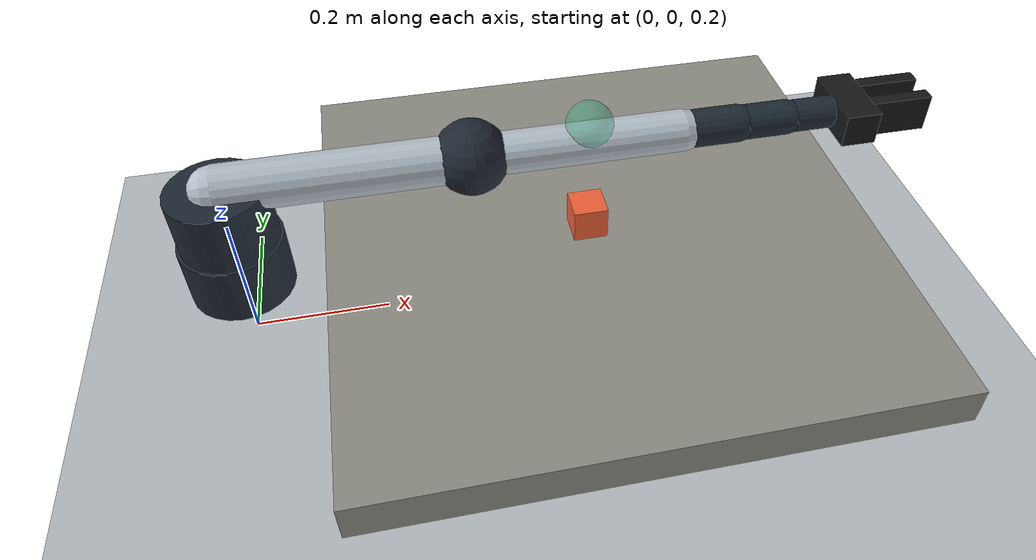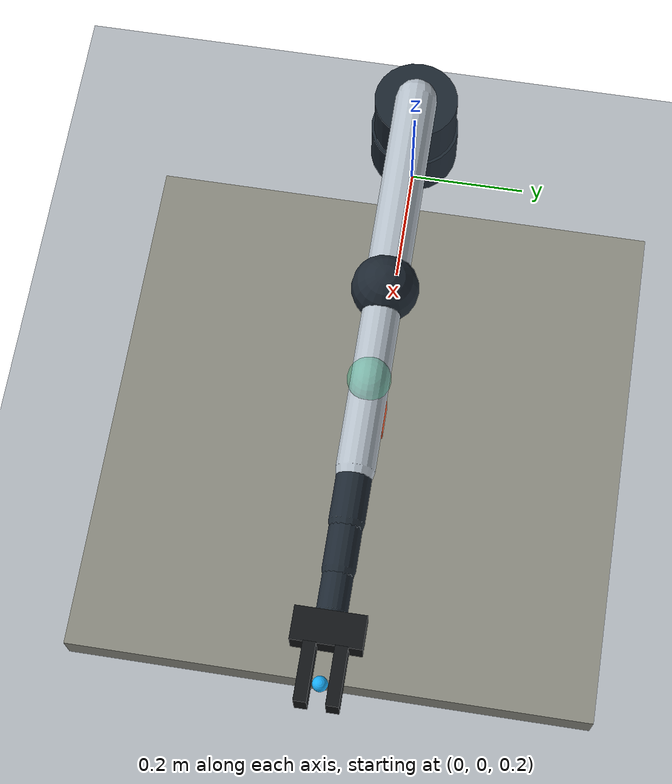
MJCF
<mujoco model="ur5_robotiq85_grasp">
  <compiler angle="radian" coordinate="local" inertiafromgeom="true"/>
  <option timestep="0.002" iterations="50" solver="Newton" gravity="0 0 -9.81"/>

  <default>
    <joint damping="1.2" armature="0.02" limited="true"/>
    <geom condim="4" friction="1.2 0.08 0.005" solref="0.01 1" solimp="0.95 0.99 0.001"/>
    <default class="visual">
      <geom contype="0" conaffinity="0"/>
    </default>
  </default>

  <asset>
    <texture name="grid" type="2d" builtin="checker" width="512" height="512" rgb1="0.82 0.84 0.86" rgb2="0.62 0.65 0.68"/>
    <material name="floor_mat" texture="grid" texrepeat="6 6" reflectance="0.15"/>
    <material name="robot_mat" rgba="0.72 0.76 0.80 1"/>
    <material name="joint_mat" rgba="0.12 0.16 0.20 1"/>
    <material name="finger_mat" rgba="0.08 0.09 0.10 1"/>
    <material name="cube_mat" rgba="0.96 0.38 0.22 1"/>
    <material name="target_mat" rgba="0.12 0.70 0.48 0.35"/>
    <material name="table_mat" rgba="0.56 0.56 0.52 1"/>
  </asset>

  <worldbody>
    <light name="key" pos="0.2 -0.7 2.0" dir="-0.2 0.5 -1" diffuse="0.9 0.9 0.9"/>
    <light name="fill" pos="-1.0 0.6 1.4" dir="0.8 -0.2 -1" diffuse="0.25 0.25 0.25"/>
    <camera name="track" mode="targetbody" target="cube" pos="1.25 -1.05 0.85" xyaxes="0.64 0.77 0 -0.30 0.25 0.92"/>

    <geom name="floor" type="plane" size="2.0 2.0 0.02" material="floor_mat"/>
    <body name="table" pos="0.54 0 0.275">
      <geom name="table_top" type="box" size="0.42 0.42 0.03" material="table_mat"/>
    </body>
    <site name="lift_target" pos="0.52 0 0.50" size="0.035" type="sphere" material="target_mat"/>

    <body name="ur5_base" pos="0 0 0.335">
      <geom name="base" type="cylinder" size="0.075 0.045" material="joint_mat"/>

      <body name="shoulder_link" pos="0 0 0.08">
        <joint name="shoulder_pan_joint" type="hinge" axis="0 0 1" range="-3.1416 3.1416"/>
        <geom name="shoulder" type="cylinder" size="0.07 0.055" material="joint_mat"/>

        <body name="upper_arm_link" pos="0 0 0.055">
          <joint name="shoulder_lift_joint" type="hinge" axis="0 1 0" range="-2.6 2.6"/>
          <geom name="upper_arm" type="capsule" fromto="0 0 0 0.35 0 0" size="0.035" material="robot_mat"/>

          <body name="forearm_link" pos="0.35 0 0">
            <joint name="elbow_joint" type="hinge" axis="0 1 0" range="-2.8 2.8"/>
            <geom name="elbow" type="sphere" size="0.055" material="joint_mat"/>
            <geom name="forearm" type="capsule" fromto="0 0 0 0.31 0 0" size="0.031" material="robot_mat"/>

            <body name="wrist_1_link" pos="0.31 0 0">
              <joint name="wrist_1_joint" type="hinge" axis="0 1 0" range="-3.1416 3.1416"/>
              <geom name="wrist_1" type="capsule" fromto="0 0 0 0.085 0 0" size="0.028" material="joint_mat"/>

              <body name="wrist_2_link" pos="0.085 0 0">
                <joint name="wrist_2_joint" type="hinge" axis="0 0 1" range="-3.1416 3.1416"/>
                <geom name="wrist_2" type="capsule" fromto="0 0 0 0.075 0 0" size="0.026" material="joint_mat"/>

                <body name="wrist_3_link" pos="0.075 0 0">
                  <joint name="wrist_3_joint" type="hinge" axis="0 1 0" range="-3.1416 3.1416"/>
                  <geom name="wrist_3" type="capsule" fromto="0 0 0 0.065 0 0" size="0.024" material="joint_mat"/>

                  <body name="robotiq85" pos="0.07 0 0">
                    <geom name="palm" type="box" pos="0.025 0 0" size="0.026 0.055 0.025" material="finger_mat"/>
                    <site name="pinch_site" pos="0.105 0 0" size="0.012" rgba="0.1 0.7 1 1"/>

                    <body name="left_finger" pos="0.055 0.024 0">
                      <joint name="left_finger_joint" type="slide" axis="0 1 0" range="0 0.04" damping="3"/>
                      <geom name="left_finger_pad" type="box" pos="0.04 0 0" size="0.045 0.010 0.028" material="finger_mat"/>
                    </body>

                    <body name="right_finger" pos="0.055 -0.024 0">
                      <joint name="right_finger_joint" type="slide" axis="0 -1 0" range="0 0.04" damping="3"/>
                      <geom name="right_finger_pad" type="box" pos="0.04 0 0" size="0.045 0.010 0.028" material="finger_mat"/>
                    </body>
                  </body>
                </body>
              </body>
            </body>
          </body>
        </body>
      </body>
    </body>

    <body name="cube" pos="0.52 0 0.331">
      <freejoint name="cube_freejoint"/>
      <geom name="cube_geom" type="box" size="0.026 0.026 0.026" mass="0.08" material="cube_mat"/>
    </body>
  </worldbody>

  <contact>
    <exclude body1="left_finger" body2="right_finger"/>
  </contact>

  <actuator>
    <position name="shoulder_pan" joint="shoulder_pan_joint" kp="80" ctrlrange="-3.1416 3.1416"/>
    <position name="shoulder_lift" joint="shoulder_lift_joint" kp="80" ctrlrange="-2.6 2.6"/>
    <position name="elbow" joint="elbow_joint" kp="70" ctrlrange="-2.8 2.8"/>
    <position name="wrist_1" joint="wrist_1_joint" kp="45" ctrlrange="-3.1416 3.1416"/>
    <position name="wrist_2" joint="wrist_2_joint" kp="35" ctrlrange="-3.1416 3.1416"/>
    <position name="wrist_3" joint="wrist_3_joint" kp="35" ctrlrange="-3.1416 3.1416"/>
    <position name="left_finger" joint="left_finger_joint" kp="160" ctrlrange="0 0.04"/>
    <position name="right_finger" joint="right_finger_joint" kp="160" ctrlrange="0 0.04"/>
  </actuator>

  <keyframe>
    <key name="home" qpos="-0.35 -0.95 1.45 -1.15 -1.57 0 0.038 0.038 0.52 0 0.331 1 0 0 0"/>
  </keyframe>
</mujoco>
